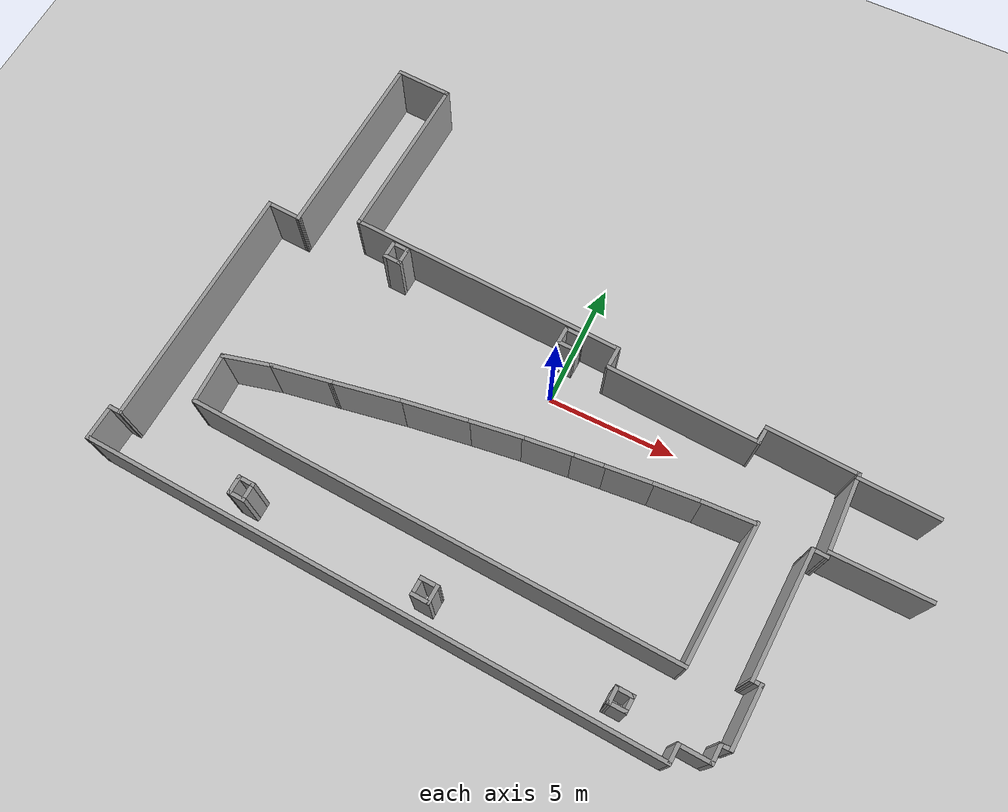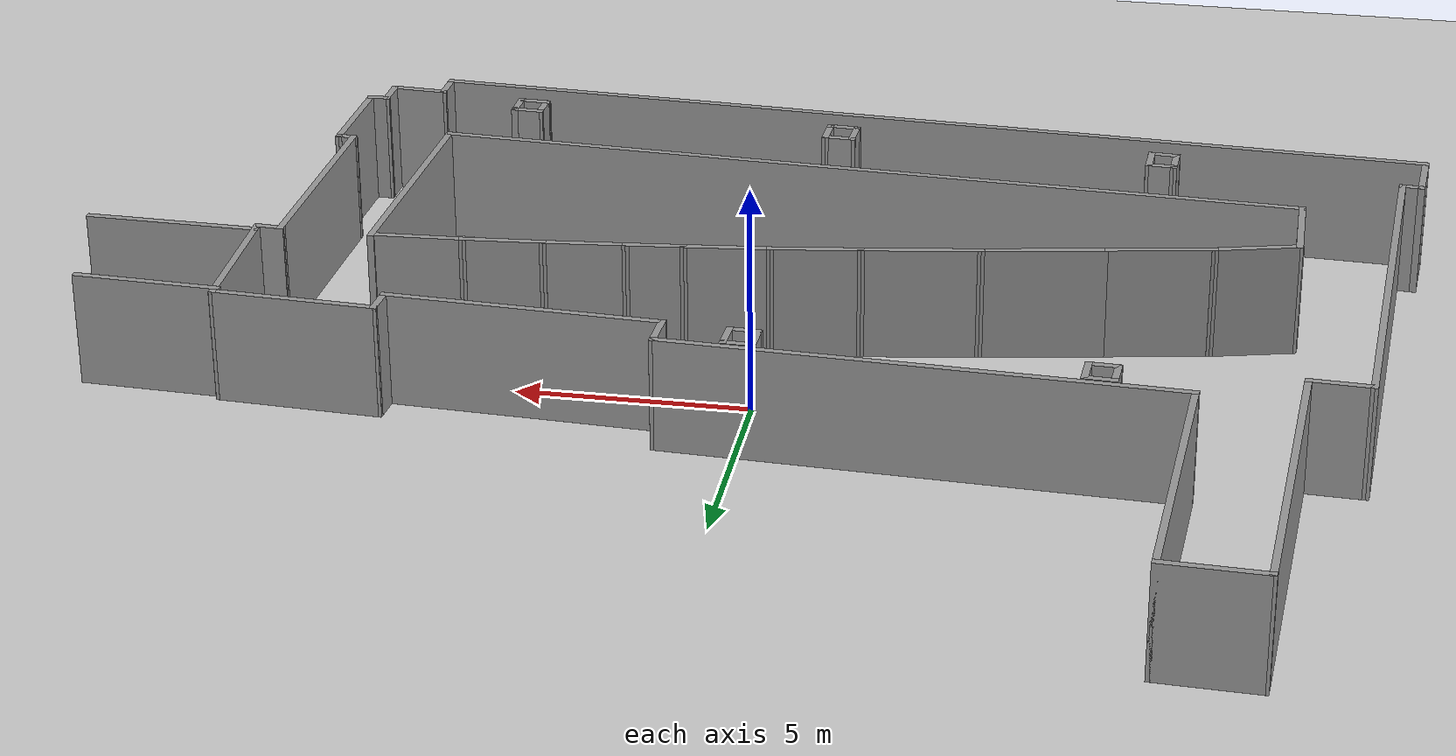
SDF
<sdf version="1.6">
 <world name="default">
  <light name="sun" type="directional">
   <pose>0 0 10 0 -0 0</pose>
   <diffuse>0.8 0.8 0.8 1</diffuse>
   <specular>0.2 0.2 0.2 1</specular>
   <attenuation>
    <range>1000</range>
    <constant>0.9</constant>
    <linear>0.01</linear>
    <quadratic>0.001</quadratic>
   </attenuation>
   <direction>-0.5 0.1 -0.9</direction>
  </light>
  <model name="ground_plane">
   <static>1</static>
   <link name="link">
    <collision name="collision">
     <geometry><plane><normal>0 0 1</normal><size>100 100</size></plane></geometry>
     <surface><friction><ode><mu>100</mu><mu2>50</mu2></ode></friction></surface>
    </collision>
    <visual name="visual">
     <cast_shadows>0</cast_shadows>
     <geometry><plane><normal>0 0 1</normal><size>100 100</size></plane></geometry>
     <material>
      <script><uri>file://media/materials/scripts/gazebo.material</uri><name>Gazebo/Grey</name></script>
     </material>
    </visual>
   </link>
  </model>
  <gravity>0 0 -9.8</gravity>
  <magnetic_field>6e-06 2.3e-05 -4.2e-05</magnetic_field>
  <atmosphere type="adiabatic"/>
  <physics name="default_physics" default="0" type="ode">
   <max_step_size>0.001</max_step_size>
   <real_time_factor>1</real_time_factor>
   <real_time_update_rate>1000</real_time_update_rate>
  </physics>
  <scene><ambient>0.4 0.4 0.4 1</ambient><background>0.7 0.7 0.7 1</background><shadows>1</shadows></scene>
  <spherical_coordinates>
   <surface_model>EARTH_WGS84</surface_model>
   <latitude_deg>0</latitude_deg>
   <longitude_deg>0</longitude_deg>
   <elevation>0</elevation>
   <heading_deg>0</heading_deg>
  </spherical_coordinates>
  <model name="hackerman_map_one_to_one">
   <pose>0.7876 -0.646941 0 0 -0 3.09598</pose>
   <link name="Wall_0">
    <collision name="Wall_0_Collision">
     <geometry><box><size>2.03629 0.15 2.5</size></box></geometry>
     <pose>0 0 1.25 0 -0 0</pose>
    </collision>
    <visual name="Wall_0_Visual">
     <pose>0 0 1.25 0 -0 0</pose>
     <geometry><box><size>2.03629 0.15 2.5</size></box></geometry>
     <material>
      <script><uri>file://media/materials/scripts/gazebo.material</uri><name>Gazebo/Grey</name></script>
      <ambient>1 1 1 1</ambient>
     </material>
     <meta><layer>0</layer></meta>
    </visual>
    <pose>-6.73935 0.977608 0 0 -0 0.092329</pose>
   </link>
   <link name="Wall_1">
    <collision name="Wall_1_Collision">
     <geometry><box><size>1.86708 0.15 2.5</size></box></geometry>
     <pose>0 0 1.25 0 -0 0</pose>
    </collision>
    <visual name="Wall_1_Visual">
     <pose>0 0 1.25 0 -0 0</pose>
     <geometry><box><size>1.86708 0.15 2.5</size></box></geometry>
     <material>
      <script><uri>file://media/materials/scripts/gazebo.material</uri><name>Gazebo/Grey</name></script>
      <ambient>1 1 1 1</ambient>
     </material>
     <meta><layer>0</layer></meta>
    </visual>
    <pose>-4.94804 1.16891 0 0 -0 0.121842</pose>
   </link>
   <link name="Wall_10">
    <collision name="Wall_10_Collision">
     <geometry><box><size>2.06589 0.15 2.5</size></box></geometry>
     <pose>0 0 1.25 0 -0 0</pose>
    </collision>
    <visual name="Wall_10_Visual">
     <pose>0 0 1.25 0 -0 0</pose>
     <geometry><box><size>2.06589 0.15 2.5</size></box></geometry>
     <material>
      <script><uri>file://media/materials/scripts/gazebo.material</uri><name>Gazebo/Grey</name></script>
      <ambient>1 1 1 1</ambient>
     </material>
     <meta><layer>0</layer></meta>
    </visual>
    <pose>11.5041 5.36022 0 0 -0 1.62529</pose>
   </link>
   <link name="Wall_14">
    <collision name="Wall_14_Collision">
     <geometry><box><size>19.25 0.15 2.5</size></box></geometry>
     <pose>0 0 1.25 0 -0 0</pose>
    </collision>
    <visual name="Wall_14_Visual">
     <pose>0 0 1.25 0 -0 0</pose>
     <geometry><box><size>19.25 0.15 2.5</size></box></geometry>
     <material>
      <script><uri>file://media/materials/scripts/gazebo.material</uri><name>Gazebo/Grey</name></script>
      <ambient>1 1 1 1</ambient>
     </material>
     <meta><layer>0</layer></meta>
    </visual>
    <pose>1.90196 6.31674 0 0 -0 3.14159</pose>
   </link>
   <link name="Wall_15">
    <collision name="Wall_15_Collision">
     <geometry><box><size>5.61179 0.15 2.5</size></box></geometry>
     <pose>0 0 1.25 0 -0 0</pose>
    </collision>
    <visual name="Wall_15_Visual">
     <pose>0 0 1.25 0 -0 0</pose>
     <geometry><box><size>5.61179 0.15 2.5</size></box></geometry>
     <material>
      <script><uri>file://media/materials/scripts/gazebo.material</uri><name>Gazebo/Grey</name></script>
      <ambient>1 1 1 1</ambient>
     </material>
     <meta><layer>0</layer></meta>
    </visual>
    <pose>-7.69804 3.5863 0 0 0 -1.58911</pose>
   </link>
   <link name="Wall_17">
    <collision name="Wall_17_Collision">
     <geometry><box><size>11.0133 0.15 2.5</size></box></geometry>
     <pose>0 0 1.25 0 -0 0</pose>
    </collision>
    <visual name="Wall_17_Visual">
     <pose>0 0 1.25 0 -0 0</pose>
     <geometry><box><size>11.0133 0.15 2.5</size></box></geometry>
     <material>
      <script><uri>file://media/materials/scripts/gazebo.material</uri><name>Gazebo/Grey</name></script>
      <ambient>1 1 1 1</ambient>
     </material>
     <meta><layer>0</layer></meta>
    </visual>
    <pose>4.68384 -2.63584 0 0 0 -0.000766</pose>
   </link>
   <link name="Wall_19">
    <collision name="Wall_19_Collision">
     <geometry><box><size>6.75 0.15 2.5</size></box></geometry>
     <pose>0 0 1.25 0 -0 0</pose>
    </collision>
    <visual name="Wall_19_Visual">
     <pose>0 0 1.25 0 -0 0</pose>
     <geometry><box><size>6.75 0.15 2.5</size></box></geometry>
     <material>
      <script><uri>file://media/materials/scripts/gazebo.material</uri><name>Gazebo/Grey</name></script>
      <ambient>1 1 1 1</ambient>
     </material>
     <meta><layer>0</layer></meta>
    </visual>
    <pose>10.1154 -5.94 0 0 0 -1.5708</pose>
   </link>
   <link name="Wall_2">
    <collision name="Wall_2_Collision">
     <geometry><box><size>1.90609 0.15 2.5</size></box></geometry>
     <pose>0 0 1.25 0 -0 0</pose>
    </collision>
    <visual name="Wall_2_Visual">
     <pose>0 0 1.25 0 -0 0</pose>
     <geometry><box><size>1.90609 0.15 2.5</size></box></geometry>
     <material>
      <script><uri>file://media/materials/scripts/gazebo.material</uri><name>Gazebo/Grey</name></script>
      <ambient>1 1 1 1</ambient>
     </material>
     <meta><layer>0</layer></meta>
    </visual>
    <pose>-3.2263 1.395 0 0 -0 0.139096</pose>
   </link>
   <link name="Wall_20">
    <collision name="Wall_20_Collision">
     <geometry><box><size>2.25 0.15 2.5</size></box></geometry>
     <pose>0 0 1.25 0 -0 0</pose>
    </collision>
    <visual name="Wall_20_Visual">
     <pose>0 0 1.25 0 -0 0</pose>
     <geometry><box><size>2.25 0.15 2.5</size></box></geometry>
     <material>
      <script><uri>file://media/materials/scripts/gazebo.material</uri><name>Gazebo/Grey</name></script>
      <ambient>1 1 1 1</ambient>
     </material>
     <meta><layer>0</layer></meta>
    </visual>
    <pose>11.1654 -9.24 0 0 -0 0</pose>
   </link>
   <link name="Wall_21">
    <collision name="Wall_21_Collision">
     <geometry><box><size>7.72383 0.15 2.5</size></box></geometry>
     <pose>0 0 1.25 0 -0 0</pose>
    </collision>
    <visual name="Wall_21_Visual">
     <pose>0 0 1.25 0 -0 0</pose>
     <geometry><box><size>7.72383 0.15 2.5</size></box></geometry>
     <material>
      <script><uri>file://media/materials/scripts/gazebo.material</uri><name>Gazebo/Grey</name></script>
      <ambient>1 1 1 1</ambient>
     </material>
     <meta><layer>0</layer></meta>
    </visual>
    <pose>12.2185 -5.45308 0 0 -0 1.56996</pose>
   </link>
   <link name="Wall_23">
    <collision name="Wall_23_Collision">
     <geometry><box><size>1.43812 0.15 2.5</size></box></geometry>
     <pose>0 0 1.25 0 -0 0</pose>
    </collision>
    <visual name="Wall_23_Visual">
     <pose>0 0 1.25 0 -0 0</pose>
     <geometry><box><size>1.43812 0.15 2.5</size></box></geometry>
     <material>
      <script><uri>file://media/materials/scripts/gazebo.material</uri><name>Gazebo/Grey</name></script>
      <ambient>1 1 1 1</ambient>
     </material>
     <meta><layer>0</layer></meta>
    </visual>
    <pose>12.8657 -1.66885 0 0 0 -0.004163</pose>
   </link>
   <link name="Wall_25">
    <collision name="Wall_25_Collision">
     <geometry><box><size>22.5362 0.15 2.5</size></box></geometry>
     <pose>0 0 1.25 0 -0 0</pose>
    </collision>
    <visual name="Wall_25_Visual">
     <pose>0 0 1.25 0 -0 0</pose>
     <geometry><box><size>22.5362 0.15 2.5</size></box></geometry>
     <material>
      <script><uri>file://media/materials/scripts/gazebo.material</uri><name>Gazebo/Grey</name></script>
      <ambient>1 1 1 1</ambient>
     </material>
     <meta><layer>0</layer></meta>
    </visual>
    <pose>2.72905 9.23167 0 0 0 -0.000671</pose>
   </link>
   <link name="Wall_26">
    <collision name="Wall_26_Collision">
     <geometry><box><size>1.4453 0.15 2.5</size></box></geometry>
     <pose>0 0 1.25 0 -0 0</pose>
    </collision>
    <visual name="Wall_26_Visual">
     <pose>0 0 1.25 0 -0 0</pose>
     <geometry><box><size>1.4453 0.15 2.5</size></box></geometry>
     <material>
      <script><uri>file://media/materials/scripts/gazebo.material</uri><name>Gazebo/Grey</name></script>
      <ambient>1 1 1 1</ambient>
     </material>
     <meta><layer>0</layer></meta>
    </visual>
    <pose>13.9134 8.57656 0 0 0 -1.5843</pose>
   </link>
   <link name="Wall_28">
    <collision name="Wall_28_Collision">
     <geometry><box><size>0.563783 0.15 2.5</size></box></geometry>
     <pose>0 0 1.25 0 -0 0</pose>
    </collision>
    <visual name="Wall_28_Visual">
     <pose>0 0 1.25 0 -0 0</pose>
     <geometry><box><size>0.563783 0.15 2.5</size></box></geometry>
     <material>
      <script><uri>file://media/materials/scripts/gazebo.material</uri><name>Gazebo/Grey</name></script>
      <ambient>1 1 1 1</ambient>
     </material>
     <meta><layer>0</layer></meta>
    </visual>
    <pose>13.6978 7.93464 0 0 0 -3.13248</pose>
   </link>
   <link name="Wall_3">
    <collision name="Wall_3_Collision">
     <geometry><box><size>1.37975 0.15 2.5</size></box></geometry>
     <pose>0 0 1.25 0 -0 0</pose>
    </collision>
    <visual name="Wall_3_Visual">
     <pose>0 0 1.25 0 -0 0</pose>
     <geometry><box><size>1.37975 0.15 2.5</size></box></geometry>
     <material>
      <script><uri>file://media/materials/scripts/gazebo.material</uri><name>Gazebo/Grey</name></script>
      <ambient>1 1 1 1</ambient>
     </material>
     <meta><layer>0</layer></meta>
    </visual>
    <pose>-1.74804 1.6037 0 0 -0 0.141897</pose>
   </link>
   <link name="Wall_30">
    <collision name="Wall_30_Collision">
     <geometry><box><size>9.75431 0.15 2.5</size></box></geometry>
     <pose>0 0 1.25 0 -0 0</pose>
    </collision>
    <visual name="Wall_30_Visual">
     <pose>0 0 1.25 0 -0 0</pose>
     <geometry><box><size>9.75431 0.15 2.5</size></box></geometry>
     <material>
      <script><uri>file://media/materials/scripts/gazebo.material</uri><name>Gazebo/Grey</name></script>
      <ambient>1 1 1 1</ambient>
     </material>
     <meta><layer>0</layer></meta>
    </visual>
    <pose>13.5004 3.13061 0 0 0 -1.56884</pose>
   </link>
   <link name="Wall_32">
    <collision name="Wall_32_Collision">
     <geometry><box><size>6.0219 0.15 2.5</size></box></geometry>
     <pose>0 0 1.25 0 -0 0</pose>
    </collision>
    <visual name="Wall_32_Visual">
     <pose>0 0 1.25 0 -0 0</pose>
     <geometry><box><size>6.0219 0.15 2.5</size></box></geometry>
     <material>
      <script><uri>file://media/materials/scripts/gazebo.material</uri><name>Gazebo/Grey</name></script>
      <ambient>1 1 1 1</ambient>
     </material>
     <meta><layer>0</layer></meta>
    </visual>
    <pose>-3.68362 -1.82496 0 0 0 -0.004504</pose>
   </link>
   <link name="Wall_33">
    <collision name="Wall_33_Collision">
     <geometry><box><size>0.9435 0.15 2.5</size></box></geometry>
     <pose>0 0 1.25 0 -0 0</pose>
    </collision>
    <visual name="Wall_33_Visual">
     <pose>0 0 1.25 0 -0 0</pose>
     <geometry><box><size>0.9435 0.15 2.5</size></box></geometry>
     <material>
      <script><uri>file://media/materials/scripts/gazebo.material</uri><name>Gazebo/Grey</name></script>
      <ambient>1 1 1 1</ambient>
     </material>
     <meta><layer>0</layer></meta>
    </visual>
    <pose>-0.747668 -2.23493 0 0 0 -1.5708</pose>
   </link>
   <link name="Wall_35">
    <collision name="Wall_35_Collision">
     <geometry><box><size>0.796417 0.15 2.5</size></box></geometry>
     <pose>0 0 1.25 0 -0 0</pose>
    </collision>
    <visual name="Wall_35_Visual">
     <pose>0 0 1.25 0 -0 0</pose>
     <geometry><box><size>0.796417 0.15 2.5</size></box></geometry>
     <material>
      <script><uri>file://media/materials/scripts/gazebo.material</uri><name>Gazebo/Grey</name></script>
      <ambient>1 1 1 1</ambient>
     </material>
     <meta><layer>0</layer></meta>
    </visual>
    <pose>-8.46785 8.916 0 0 0 -1.58256</pose>
   </link>
   <link name="Wall_38">
    <collision name="Wall_38_Collision">
     <geometry><box><size>1.32107 0.15 2.5</size></box></geometry>
     <pose>0 0 1.25 0 -0 0</pose>
    </collision>
    <visual name="Wall_38_Visual">
     <pose>0 0 1.25 0 -0 0</pose>
     <geometry><box><size>1.32107 0.15 2.5</size></box></geometry>
     <material>
      <script><uri>file://media/materials/scripts/gazebo.material</uri><name>Gazebo/Grey</name></script>
      <ambient>1 1 1 1</ambient>
     </material>
     <meta><layer>0</layer></meta>
    </visual>
    <pose>-9.05719 8.59281 0 0 -0 0</pose>
   </link>
   <link name="Wall_4">
    <collision name="Wall_4_Collision">
     <geometry><box><size>1.97998 0.15 2.5</size></box></geometry>
     <pose>0 0 1.25 0 -0 0</pose>
    </collision>
    <visual name="Wall_4_Visual">
     <pose>0 0 1.25 0 -0 0</pose>
     <geometry><box><size>1.97998 0.15 2.5</size></box></geometry>
     <material>
      <script><uri>file://media/materials/scripts/gazebo.material</uri><name>Gazebo/Grey</name></script>
      <ambient>1 1 1 1</ambient>
     </material>
     <meta><layer>0</layer></meta>
    </visual>
    <pose>-0.235001 1.82978 0 0 -0 0.152649</pose>
   </link>
   <link name="Wall_40">
    <collision name="Wall_40_Collision">
     <geometry><box><size>0.781209 0.15 2.5</size></box></geometry>
     <pose>0 0 1.25 0 -0 0</pose>
    </collision>
    <visual name="Wall_40_Visual">
     <pose>0 0 1.25 0 -0 0</pose>
     <geometry><box><size>0.781209 0.15 2.5</size></box></geometry>
     <material>
      <script><uri>file://media/materials/scripts/gazebo.material</uri><name>Gazebo/Grey</name></script>
      <ambient>1 1 1 1</ambient>
     </material>
     <meta><layer>0</layer></meta>
    </visual>
    <pose>-9.64273 8.27723 0 0 0 -1.5708</pose>
   </link>
   <link name="Wall_42">
    <collision name="Wall_42_Collision">
     <geometry><box><size>0.527951 0.15 2.5</size></box></geometry>
     <pose>0 0 1.25 0 -0 0</pose>
    </collision>
    <visual name="Wall_42_Visual">
     <pose>0 0 1.25 0 -0 0</pose>
     <geometry><box><size>0.527951 0.15 2.5</size></box></geometry>
     <material>
      <script><uri>file://media/materials/scripts/gazebo.material</uri><name>Gazebo/Grey</name></script>
      <ambient>1 1 1 1</ambient>
     </material>
     <meta><layer>0</layer></meta>
    </visual>
    <pose>-9.83082 7.94721 0 0 0 -3.06498</pose>
   </link>
   <link name="Wall_43">
    <collision name="Wall_43_Collision">
     <geometry><box><size>2.40624 0.15 2.5</size></box></geometry>
     <pose>0 0 1.25 0 -0 0</pose>
    </collision>
    <visual name="Wall_43_Visual">
     <pose>0 0 1.25 0 -0 0</pose>
     <geometry><box><size>2.40624 0.15 2.5</size></box></geometry>
     <material>
      <script><uri>file://media/materials/scripts/gazebo.material</uri><name>Gazebo/Grey</name></script>
      <ambient>1 1 1 1</ambient>
     </material>
     <meta><layer>0</layer></meta>
    </visual>
    <pose>-10.0233 6.80466 0 0 0 -1.58141</pose>
   </link>
   <link name="Wall_44">
    <collision name="Wall_44_Collision">
     <geometry><box><size>0.474039 0.15 2.5</size></box></geometry>
     <pose>0 0 1.25 0 -0 0</pose>
    </collision>
    <visual name="Wall_44_Visual">
     <pose>0 0 1.25 0 -0 0</pose>
     <geometry><box><size>0.474039 0.15 2.5</size></box></geometry>
     <material>
      <script><uri>file://media/materials/scripts/gazebo.material</uri><name>Gazebo/Grey</name></script>
      <ambient>1 1 1 1</ambient>
     </material>
     <meta><layer>0</layer></meta>
    </visual>
    <pose>-9.87348 5.67655 0 0 -0 0</pose>
   </link>
   <link name="Wall_46">
    <collision name="Wall_46_Collision">
     <geometry><box><size>0.674922 0.15 2.5</size></box></geometry>
     <pose>0 0 1.25 0 -0 0</pose>
    </collision>
    <visual name="Wall_46_Visual">
     <pose>0 0 1.25 0 -0 0</pose>
     <geometry><box><size>0.674922 0.15 2.5</size></box></geometry>
     <material>
      <script><uri>file://media/materials/scripts/gazebo.material</uri><name>Gazebo/Grey</name></script>
      <ambient>1 1 1 1</ambient>
     </material>
     <meta><layer>0</layer></meta>
    </visual>
    <pose>-6.57816 8.224 0 0 0 -1.5708</pose>
   </link>
   <link name="Wall_47">
    <collision name="Wall_47_Collision">
     <geometry><box><size>0.735537 0.15 2.5</size></box></geometry>
     <pose>0 0 1.25 0 -0 0</pose>
    </collision>
    <visual name="Wall_47_Visual">
     <pose>0 0 1.25 0 -0 0</pose>
     <geometry><box><size>0.735537 0.15 2.5</size></box></geometry>
     <material>
      <script><uri>file://media/materials/scripts/gazebo.material</uri><name>Gazebo/Grey</name></script>
      <ambient>1 1 1 1</ambient>
     </material>
     <meta><layer>0</layer></meta>
    </visual>
    <pose>-6.2854 7.96165 0 0 -0 0</pose>
   </link>
   <link name="Wall_48">
    <collision name="Wall_48_Collision">
     <geometry><box><size>0.689964 0.15 2.5</size></box></geometry>
     <pose>0 0 1.25 0 -0 0</pose>
    </collision>
    <visual name="Wall_48_Visual">
     <pose>0 0 1.25 0 -0 0</pose>
     <geometry><box><size>0.689964 0.15 2.5</size></box></geometry>
     <material>
      <script><uri>file://media/materials/scripts/gazebo.material</uri><name>Gazebo/Grey</name></script>
      <ambient>1 1 1 1</ambient>
     </material>
     <meta><layer>0</layer></meta>
    </visual>
    <pose>-5.98883 8.2316 0 0 -0 1.55671</pose>
   </link>
   <link name="Wall_49">
    <collision name="Wall_49_Collision">
     <geometry><box><size>0.728383 0.15 2.5</size></box></geometry>
     <pose>0 0 1.25 0 -0 0</pose>
    </collision>
    <visual name="Wall_49_Visual">
     <pose>0 0 1.25 0 -0 0</pose>
     <geometry><box><size>0.728383 0.15 2.5</size></box></geometry>
     <material>
      <script><uri>file://media/materials/scripts/gazebo.material</uri><name>Gazebo/Grey</name></script>
      <ambient>1 1 1 1</ambient>
     </material>
     <meta><layer>0</layer></meta>
    </visual>
    <pose>-6.27399 8.49775 0 0 0 -3.12844</pose>
   </link>
   <link name="Wall_5">
    <collision name="Wall_5_Collision">
     <geometry><box><size>2.0602 0.15 2.5</size></box></geometry>
     <pose>0 0 1.25 0 -0 0</pose>
    </collision>
    <visual name="Wall_5_Visual">
     <pose>0 0 1.25 0 -0 0</pose>
     <geometry><box><size>2.0602 0.15 2.5</size></box></geometry>
     <material>
      <script><uri>file://media/materials/scripts/gazebo.material</uri><name>Gazebo/Grey</name></script>
      <ambient>1 1 1 1</ambient>
     </material>
     <meta><layer>0</layer></meta>
    </visual>
    <pose>1.60848 2.14283 0 0 -0 0.183111</pose>
   </link>
   <link name="Wall_53">
    <collision name="Wall_53_Collision">
     <geometry><box><size>0.753407 0.15 2.5</size></box></geometry>
     <pose>0 0 1.25 0 -0 0</pose>
    </collision>
    <visual name="Wall_53_Visual">
     <pose>0 0 1.25 0 -0 0</pose>
     <geometry><box><size>0.753407 0.15 2.5</size></box></geometry>
     <material>
      <script><uri>file://media/materials/scripts/gazebo.material</uri><name>Gazebo/Grey</name></script>
      <ambient>1 1 1 1</ambient>
     </material>
     <meta><layer>0</layer></meta>
    </visual>
    <pose>0.659743 8.21394 0 0 0 -1.5708</pose>
   </link>
   <link name="Wall_54">
    <collision name="Wall_54_Collision">
     <geometry><box><size>0.753491 0.15 2.5</size></box></geometry>
     <pose>0 0 1.25 0 -0 0</pose>
    </collision>
    <visual name="Wall_54_Visual">
     <pose>0 0 1.25 0 -0 0</pose>
     <geometry><box><size>0.753491 0.15 2.5</size></box></geometry>
     <material>
      <script><uri>file://media/materials/scripts/gazebo.material</uri><name>Gazebo/Grey</name></script>
      <ambient>1 1 1 1</ambient>
     </material>
     <meta><layer>0</layer></meta>
    </visual>
    <pose>0.961446 7.91476 0 0 -0 0.008333</pose>
   </link>
   <link name="Wall_55">
    <collision name="Wall_55_Collision">
     <geometry><box><size>0.753407 0.15 2.5</size></box></geometry>
     <pose>0 0 1.25 0 -0 0</pose>
    </collision>
    <visual name="Wall_55_Visual">
     <pose>0 0 1.25 0 -0 0</pose>
     <geometry><box><size>0.753407 0.15 2.5</size></box></geometry>
     <material>
      <script><uri>file://media/materials/scripts/gazebo.material</uri><name>Gazebo/Grey</name></script>
      <ambient>1 1 1 1</ambient>
     </material>
     <meta><layer>0</layer></meta>
    </visual>
    <pose>1.26315 8.21897 0 0 -0 1.5708</pose>
   </link>
   <link name="Wall_56">
    <collision name="Wall_56_Collision">
     <geometry><box><size>0.753428 0.15 2.5</size></box></geometry>
     <pose>0 0 1.25 0 -0 0</pose>
    </collision>
    <visual name="Wall_56_Visual">
     <pose>0 0 1.25 0 -0 0</pose>
     <geometry><box><size>0.753428 0.15 2.5</size></box></geometry>
     <material>
      <script><uri>file://media/materials/scripts/gazebo.material</uri><name>Gazebo/Grey</name></script>
      <ambient>1 1 1 1</ambient>
     </material>
     <meta><layer>0</layer></meta>
    </visual>
    <pose>0.961446 8.52068 0 0 -0 3.14159</pose>
   </link>
   <link name="Wall_58">
    <collision name="Wall_58_Collision">
     <geometry><box><size>0.753491 0.15 2.5</size></box></geometry>
     <pose>0 0 1.25 0 -0 0</pose>
    </collision>
    <visual name="Wall_58_Visual">
     <pose>0 0 1.25 0 -0 0</pose>
     <geometry><box><size>0.753491 0.15 2.5</size></box></geometry>
     <material>
      <script><uri>file://media/materials/scripts/gazebo.material</uri><name>Gazebo/Grey</name></script>
      <ambient>1 1 1 1</ambient>
     </material>
     <meta><layer>0</layer></meta>
    </visual>
    <pose>7.94467 8.21009 0 0 0 -1.55413</pose>
   </link>
   <link name="Wall_59">
    <collision name="Wall_59_Collision">
     <geometry><box><size>0.698095 0.15 2.5</size></box></geometry>
     <pose>0 0 1.25 0 -0 0</pose>
    </collision>
    <visual name="Wall_59_Visual">
     <pose>0 0 1.25 0 -0 0</pose>
     <geometry><box><size>0.698095 0.15 2.5</size></box></geometry>
     <material>
      <script><uri>file://media/materials/scripts/gazebo.material</uri><name>Gazebo/Grey</name></script>
      <ambient>1 1 1 1</ambient>
     </material>
     <meta><layer>0</layer></meta>
    </visual>
    <pose>8.22123 7.90838 0 0 -0 0</pose>
   </link>
   <link name="Wall_6">
    <collision name="Wall_6_Collision">
     <geometry><box><size>2.66712 0.15 2.5</size></box></geometry>
     <pose>0 0 1.25 0 -0 0</pose>
    </collision>
    <visual name="Wall_6_Visual">
     <pose>0 0 1.25 0 -0 0</pose>
     <geometry><box><size>2.66712 0.15 2.5</size></box></geometry>
     <material>
      <script><uri>file://media/materials/scripts/gazebo.material</uri><name>Gazebo/Grey</name></script>
      <ambient>1 1 1 1</ambient>
     </material>
     <meta><layer>0</layer></meta>
    </visual>
    <pose>3.78239 2.56022 0 0 -0 0.194686</pose>
   </link>
   <link name="Wall_60">
    <collision name="Wall_60_Collision">
     <geometry><box><size>0.755942 0.15 2.5</size></box></geometry>
     <pose>0 0 1.25 0 -0 0</pose>
    </collision>
    <visual name="Wall_60_Visual">
     <pose>0 0 1.25 0 -0 0</pose>
     <geometry><box><size>0.755942 0.15 2.5</size></box></geometry>
     <material>
      <script><uri>file://media/materials/scripts/gazebo.material</uri><name>Gazebo/Grey</name></script>
      <ambient>1 1 1 1</ambient>
     </material>
     <meta><layer>0</layer></meta>
    </visual>
    <pose>8.49528 8.21134 0 0 -0 1.57909</pose>
   </link>
   <link name="Wall_61">
    <collision name="Wall_61_Collision">
     <geometry><box><size>0.705728 0.15 2.5</size></box></geometry>
     <pose>0 0 1.25 0 -0 0</pose>
    </collision>
    <visual name="Wall_61_Visual">
     <pose>0 0 1.25 0 -0 0</pose>
     <geometry><box><size>0.705728 0.15 2.5</size></box></geometry>
     <material>
      <script><uri>file://media/materials/scripts/gazebo.material</uri><name>Gazebo/Grey</name></script>
      <ambient>1 1 1 1</ambient>
     </material>
     <meta><layer>0</layer></meta>
    </visual>
    <pose>8.21494 8.51431 0 0 -0 3.14159</pose>
   </link>
   <link name="Wall_66">
    <collision name="Wall_66_Collision">
     <geometry><box><size>0.75 0.15 2.5</size></box></geometry>
     <pose>0 0 1.25 0 -0 0</pose>
    </collision>
    <visual name="Wall_66_Visual">
     <pose>0 0 1.25 0 -0 0</pose>
     <geometry><box><size>0.75 0.15 2.5</size></box></geometry>
     <material>
      <script><uri>file://media/materials/scripts/gazebo.material</uri><name>Gazebo/Grey</name></script>
      <ambient>1 1 1 1</ambient>
     </material>
     <meta><layer>0</layer></meta>
    </visual>
    <pose>0.651611 -2.15712 0 0 0 -1.5708</pose>
   </link>
   <link name="Wall_67">
    <collision name="Wall_67_Collision">
     <geometry><box><size>0.75 0.15 2.5</size></box></geometry>
     <pose>0 0 1.25 0 -0 0</pose>
    </collision>
    <visual name="Wall_67_Visual">
     <pose>0 0 1.25 0 -0 0</pose>
     <geometry><box><size>0.75 0.15 2.5</size></box></geometry>
     <material>
      <script><uri>file://media/materials/scripts/gazebo.material</uri><name>Gazebo/Grey</name></script>
      <ambient>1 1 1 1</ambient>
     </material>
     <meta><layer>0</layer></meta>
    </visual>
    <pose>0.951611 -2.45712 0 0 -0 0</pose>
   </link>
   <link name="Wall_68">
    <collision name="Wall_68_Collision">
     <geometry><box><size>0.75 0.15 2.5</size></box></geometry>
     <pose>0 0 1.25 0 -0 0</pose>
    </collision>
    <visual name="Wall_68_Visual">
     <pose>0 0 1.25 0 -0 0</pose>
     <geometry><box><size>0.75 0.15 2.5</size></box></geometry>
     <material>
      <script><uri>file://media/materials/scripts/gazebo.material</uri><name>Gazebo/Grey</name></script>
      <ambient>1 1 1 1</ambient>
     </material>
     <meta><layer>0</layer></meta>
    </visual>
    <pose>1.25161 -2.15712 0 0 -0 1.5708</pose>
   </link>
   <link name="Wall_69">
    <collision name="Wall_69_Collision">
     <geometry><box><size>0.75 0.15 2.5</size></box></geometry>
     <pose>0 0 1.25 0 -0 0</pose>
    </collision>
    <visual name="Wall_69_Visual">
     <pose>0 0 1.25 0 -0 0</pose>
     <geometry><box><size>0.75 0.15 2.5</size></box></geometry>
     <material>
      <script><uri>file://media/materials/scripts/gazebo.material</uri><name>Gazebo/Grey</name></script>
      <ambient>1 1 1 1</ambient>
     </material>
     <meta><layer>0</layer></meta>
    </visual>
    <pose>0.951611 -1.85712 0 0 -0 3.14159</pose>
   </link>
   <link name="Wall_7">
    <collision name="Wall_7_Collision">
     <geometry><box><size>2.82487 0.15 2.5</size></box></geometry>
     <pose>0 0 1.25 0 -0 0</pose>
    </collision>
    <visual name="Wall_7_Visual">
     <pose>0 0 1.25 0 -0 0</pose>
     <geometry><box><size>2.82487 0.15 2.5</size></box></geometry>
     <material>
      <script><uri>file://media/materials/scripts/gazebo.material</uri><name>Gazebo/Grey</name></script>
      <ambient>1 1 1 1</ambient>
     </material>
     <meta><layer>0</layer></meta>
    </visual>
    <pose>6.32152 3.09935 0 0 -0 0.2229</pose>
   </link>
   <link name="Wall_71">
    <collision name="Wall_71_Collision">
     <geometry><box><size>0.75 0.15 2.5</size></box></geometry>
     <pose>0 0 1.25 0 -0 0</pose>
    </collision>
    <visual name="Wall_71_Visual">
     <pose>0 0 1.25 0 -0 0</pose>
     <geometry><box><size>0.75 0.15 2.5</size></box></geometry>
     <material>
      <script><uri>file://media/materials/scripts/gazebo.material</uri><name>Gazebo/Grey</name></script>
      <ambient>1 1 1 1</ambient>
     </material>
     <meta><layer>0</layer></meta>
    </visual>
    <pose>7.91775 -2.15923 0 0 0 -1.5708</pose>
   </link>
   <link name="Wall_72">
    <collision name="Wall_72_Collision">
     <geometry><box><size>0.75 0.15 2.5</size></box></geometry>
     <pose>0 0 1.25 0 -0 0</pose>
    </collision>
    <visual name="Wall_72_Visual">
     <pose>0 0 1.25 0 -0 0</pose>
     <geometry><box><size>0.75 0.15 2.5</size></box></geometry>
     <material>
      <script><uri>file://media/materials/scripts/gazebo.material</uri><name>Gazebo/Grey</name></script>
      <ambient>1 1 1 1</ambient>
     </material>
     <meta><layer>0</layer></meta>
    </visual>
    <pose>8.21775 -2.45923 0 0 -0 0</pose>
   </link>
   <link name="Wall_73">
    <collision name="Wall_73_Collision">
     <geometry><box><size>0.75 0.15 2.5</size></box></geometry>
     <pose>0 0 1.25 0 -0 0</pose>
    </collision>
    <visual name="Wall_73_Visual">
     <pose>0 0 1.25 0 -0 0</pose>
     <geometry><box><size>0.75 0.15 2.5</size></box></geometry>
     <material>
      <script><uri>file://media/materials/scripts/gazebo.material</uri><name>Gazebo/Grey</name></script>
      <ambient>1 1 1 1</ambient>
     </material>
     <meta><layer>0</layer></meta>
    </visual>
    <pose>8.51775 -2.15923 0 0 -0 1.5708</pose>
   </link>
   <link name="Wall_74">
    <collision name="Wall_74_Collision">
     <geometry><box><size>0.75 0.15 2.5</size></box></geometry>
     <pose>0 0 1.25 0 -0 0</pose>
    </collision>
    <visual name="Wall_74_Visual">
     <pose>0 0 1.25 0 -0 0</pose>
     <geometry><box><size>0.75 0.15 2.5</size></box></geometry>
     <material>
      <script><uri>file://media/materials/scripts/gazebo.material</uri><name>Gazebo/Grey</name></script>
      <ambient>1 1 1 1</ambient>
     </material>
     <meta><layer>0</layer></meta>
    </visual>
    <pose>8.21775 -1.85923 0 0 -0 3.14159</pose>
   </link>
   <link name="Wall_76">
    <collision name="Wall_76_Collision">
     <geometry><box><size>5.03432 0.15 2.5</size></box></geometry>
     <pose>0 0 1.25 0 -0 0</pose>
    </collision>
    <visual name="Wall_76_Visual">
     <pose>0 0 1.25 0 -0 0</pose>
     <geometry><box><size>5.03432 0.15 2.5</size></box></geometry>
     <material>
      <script><uri>file://media/materials/scripts/gazebo.material</uri><name>Gazebo/Grey</name></script>
      <ambient>1 1 1 1</ambient>
     </material>
     <meta><layer>0</layer></meta>
    </visual>
    <pose>-9.72705 3.23444 0 0 0 -1.57708</pose>
   </link>
   <link name="Wall_78">
    <collision name="Wall_78_Collision">
     <geometry><box><size>0.667411 0.15 2.5</size></box></geometry>
     <pose>0 0 1.25 0 -0 0</pose>
    </collision>
    <visual name="Wall_78_Visual">
     <pose>0 0 1.25 0 -0 0</pose>
     <geometry><box><size>0.667411 0.15 2.5</size></box></geometry>
     <material>
      <script><uri>file://media/materials/scripts/gazebo.material</uri><name>Gazebo/Grey</name></script>
      <ambient>1 1 1 1</ambient>
     </material>
     <meta><layer>0</layer></meta>
    </visual>
    <pose>-10.0011 0.790114 0 0 0 -0.008547</pose>
   </link>
   <link name="Wall_8">
    <collision name="Wall_8_Collision">
     <geometry><box><size>2.39476 0.15 2.5</size></box></geometry>
     <pose>0 0 1.25 0 -0 0</pose>
    </collision>
    <visual name="Wall_8_Visual">
     <pose>0 0 1.25 0 -0 0</pose>
     <geometry><box><size>2.39476 0.15 2.5</size></box></geometry>
     <material>
      <script><uri>file://media/materials/scripts/gazebo.material</uri><name>Gazebo/Grey</name></script>
      <ambient>1 1 1 1</ambient>
     </material>
     <meta><layer>0</layer></meta>
    </visual>
    <pose>8.72152 3.63848 0 0 -0 0.218669</pose>
   </link>
   <link name="Wall_81">
    <collision name="Wall_81_Collision">
     <geometry><box><size>3.35125 0.15 2.5</size></box></geometry>
     <pose>0 0 1.25 0 -0 0</pose>
    </collision>
    <visual name="Wall_81_Visual">
     <pose>0 0 1.25 0 -0 0</pose>
     <geometry><box><size>3.35125 0.15 2.5</size></box></geometry>
     <material>
      <script><uri>file://media/materials/scripts/gazebo.material</uri><name>Gazebo/Grey</name></script>
      <ambient>1 1 1 1</ambient>
     </material>
     <meta><layer>0</layer></meta>
    </visual>
    <pose>-10.1836 -0.806486 0 0 0 -1.52317</pose>
   </link>
   <link name="Wall_82">
    <collision name="Wall_82_Collision">
     <geometry><box><size>3.61384 0.15 2.5</size></box></geometry>
     <pose>0 0 1.25 0 -0 0</pose>
    </collision>
    <visual name="Wall_82_Visual">
     <pose>0 0 1.25 0 -0 0</pose>
     <geometry><box><size>3.61384 0.15 2.5</size></box></geometry>
     <material>
      <script><uri>file://media/materials/scripts/gazebo.material</uri><name>Gazebo/Grey</name></script>
      <ambient>1 1 1 1</ambient>
     </material>
     <meta><layer>0</layer></meta>
    </visual>
    <pose>-8.37555 -2.41985 0 0 0 -0.008401</pose>
   </link>
   <link name="Wall_83">
    <collision name="Wall_83_Collision">
     <geometry><box><size>0.773132 0.15 2.5</size></box></geometry>
     <pose>0 0 1.25 0 -0 0</pose>
    </collision>
    <visual name="Wall_83_Visual">
     <pose>0 0 1.25 0 -0 0</pose>
     <geometry><box><size>0.773132 0.15 2.5</size></box></geometry>
     <material>
      <script><uri>file://media/materials/scripts/gazebo.material</uri><name>Gazebo/Grey</name></script>
      <ambient>1 1 1 1</ambient>
     </material>
     <meta><layer>0</layer></meta>
    </visual>
    <pose>-6.63163 -2.12306 0 0 -0 1.53207</pose>
   </link>
   <link name="Wall_86">
    <collision name="Wall_86_Collision">
     <geometry><box><size>3.8174 0.15 2.5</size></box></geometry>
     <pose>0 0 1.25 0 -0 0</pose>
    </collision>
    <visual name="Wall_86_Visual">
     <pose>0 0 1.25 0 -0 0</pose>
     <geometry><box><size>3.8174 0.15 2.5</size></box></geometry>
     <material>
      <script><uri>file://media/materials/scripts/gazebo.material</uri><name>Gazebo/Grey</name></script>
      <ambient>1 1 1 1</ambient>
     </material>
     <meta><layer>0</layer></meta>
    </visual>
    <pose>-12.0882 0.567185 0 0 0 -3.11628</pose>
   </link>
   <link name="Wall_88">
    <collision name="Wall_88_Collision">
     <geometry><box><size>3.19746 0.15 2.5</size></box></geometry>
     <pose>0 0 1.25 0 -0 0</pose>
    </collision>
    <visual name="Wall_88_Visual">
     <pose>0 0 1.25 0 -0 0</pose>
     <geometry><box><size>3.19746 0.15 2.5</size></box></geometry>
     <material>
      <script><uri>file://media/materials/scripts/gazebo.material</uri><name>Gazebo/Grey</name></script>
      <ambient>1 1 1 1</ambient>
     </material>
     <meta><layer>0</layer></meta>
    </visual>
    <pose>-11.6086 -2.2637 0 0 -0 3.14159</pose>
   </link>
   <link name="Wall_9">
    <collision name="Wall_9_Collision">
     <geometry><box><size>1.96571 0.15 2.5</size></box></geometry>
     <pose>0 0 1.25 0 -0 0</pose>
    </collision>
    <visual name="Wall_9_Visual">
     <pose>0 0 1.25 0 -0 0</pose>
     <geometry><box><size>1.96571 0.15 2.5</size></box></geometry>
     <material>
      <script><uri>file://media/materials/scripts/gazebo.material</uri><name>Gazebo/Grey</name></script>
      <ambient>1 1 1 1</ambient>
     </material>
     <meta><layer>0</layer></meta>
    </visual>
    <pose>10.6867 4.14283 0 0 -0 0.291457</pose>
   </link>
   <static>1</static>
  </model>
  <light name="user_point_light_0" type="point">
   <pose>-10.1143 -8.56382 1 0 -0 0</pose>
   <diffuse>0.5 0.5 0.5 1</diffuse>
   <specular>0.1 0.1 0.1 1</specular>
   <attenuation>
    <range>20</range>
    <constant>0.5</constant>
    <linear>0.01</linear>
    <quadratic>0.001</quadratic>
   </attenuation>
   <cast_shadows>0</cast_shadows>
   <direction>0 0 -1</direction>
  </light>
 </world>
</sdf>
